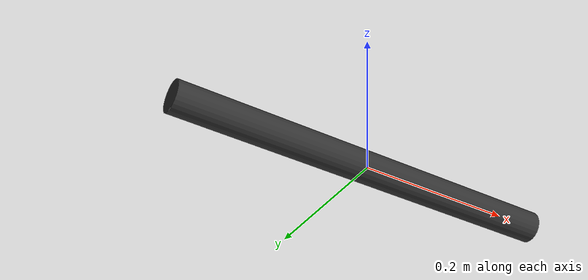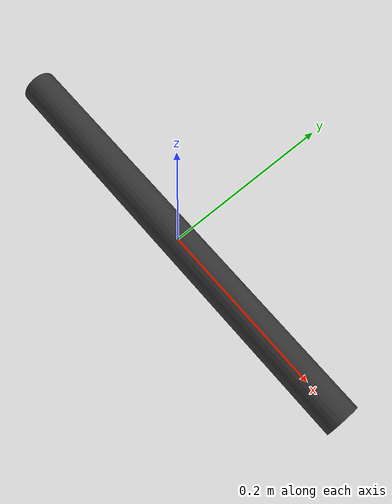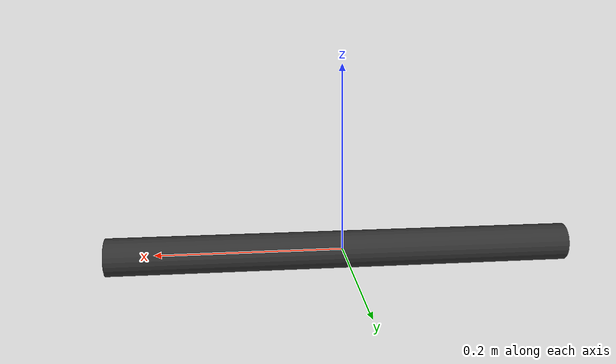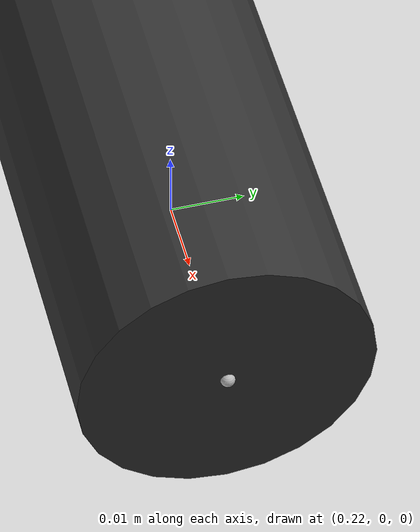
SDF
<?xml version="1.0" ?>
<sdf version="1.8">
  <model name="segment">
    <link name="segment_link">
      <inertial>
        <mass>0.00001</mass>
        <pose>0 0 0 0 1.5708 0</pose>
        <inertia>
            <ixx>1e-9</ixx>
            <iyy>1e-9</iyy>
            <izz>1e-9</izz>
        </inertia>
      </inertial>
      <visual name="segment_visual">
        <pose>0 0 0 0 1.5708 0</pose>
        <geometry>
          <cylinder>
            <radius>0.02</radius>
            <length>0.5</length> </cylinder>
        </geometry>
        <material>
          <ambient>0.2 0.2 0.2 1</ambient>
          <diffuse>0.2 0.2 0.2 1</diffuse>
          <specular>0.0 0.0 0.0 1</specular>
          <emissive>0.0 0.0 0.0 1</emissive>
        </material>
      </visual>
      <collision name="segment_collision">
        <pose>0 0 0 0 1.5708 0</pose>
        <geometry>
          <cylinder>
            <radius>0.02</radius>
            <length>0.5</length>
          </cylinder>
        </geometry>
      </collision>
    </link>
    <link name="segment_end">
        <pose>0.25 0 0 0 0 0</pose>
        <inertial>
          <mass>1e-9</mass>
          <inertia>
            <ixx>1e-9</ixx>
            <iyy>1e-9</iyy>
            <izz>1e-9</izz>
        </inertia>
        </inertial>
        <visual name="end_visual"><geometry><sphere><radius>0.001</radius></sphere></geometry></visual>
        <collision name="end_collision"><geometry><sphere><radius>0.001</radius></sphere></geometry></collision>
    </link>
    <joint name="end_joint" type="fixed">
        <parent>segment_link</parent>
        <child>segment_end</child>
    </joint>
  </model>
</sdf>
